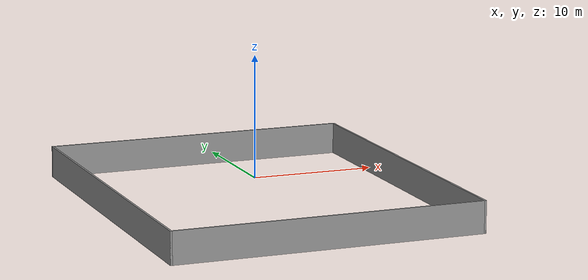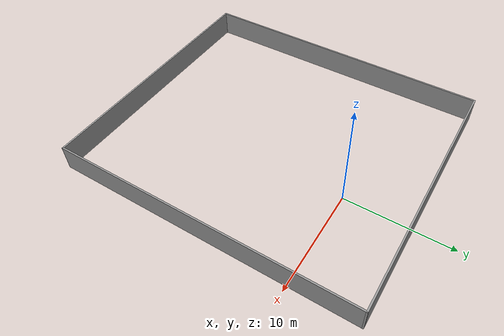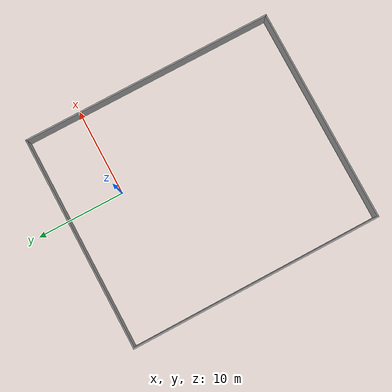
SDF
<?xml version='1.0'?>
<sdf version='1.6'>
  <model name='experiment.sdf'>
    <pose frame=''>-2.76537 -8.08491 0 0 -0 0</pose>
    <link name='Wall_0'>
      <collision name='Wall_0_Collision'>
        <geometry>
          <box>
            <size>28.75 0.15 2.5</size>
          </box>
        </geometry>
        <pose frame=''>0 0 1.25 0 -0 0</pose>
      </collision>
      <visual name='Wall_0_Visual'>
        <pose frame=''>0 0 1.25 0 -0 0</pose>
        <geometry>
          <box>
            <size>28.75 0.15 2.5</size>
          </box>
        </geometry>
        <material>
          <script>
            <uri>file://media/materials/scripts/gazebo.material</uri>
            <name>Gazebo/Grey</name>
          </script>
          <ambient>1 1 1 1</ambient>
        </material>
      </visual>
      <pose frame=''>-12.175 0 0 0 0 -1.5708</pose>
    </link>
    <link name='Wall_1'>
      <collision name='Wall_1_Collision'>
        <geometry>
          <box>
            <size>24.5 0.15 2.5</size>
          </box>
        </geometry>
        <pose frame=''>0 0 1.25 0 -0 0</pose>
      </collision>
      <visual name='Wall_1_Visual'>
        <pose frame=''>0 0 1.25 0 -0 0</pose>
        <geometry>
          <box>
            <size>24.5 0.15 2.5</size>
          </box>
        </geometry>
        <material>
          <script>
            <uri>file://media/materials/scripts/gazebo.material</uri>
            <name>Gazebo/Grey</name>
          </script>
          <ambient>1 1 1 1</ambient>
        </material>
      </visual>
      <pose frame=''>0 -14.3 0 0 -0 0</pose>
    </link>
    <link name='Wall_2'>
      <collision name='Wall_2_Collision'>
        <geometry>
          <box>
            <size>28.75 0.15 2.5</size>
          </box>
        </geometry>
        <pose frame=''>0 0 1.25 0 -0 0</pose>
      </collision>
      <visual name='Wall_2_Visual'>
        <pose frame=''>0 0 1.25 0 -0 0</pose>
        <geometry>
          <box>
            <size>28.75 0.15 2.5</size>
          </box>
        </geometry>
        <material>
          <script>
            <uri>file://media/materials/scripts/gazebo.material</uri>
            <name>Gazebo/Grey</name>
          </script>
          <ambient>1 1 1 1</ambient>
        </material>
      </visual>
      <pose frame=''>12.175 0 0 0 -0 1.5708</pose>
    </link>
    <link name='Wall_3'>
      <collision name='Wall_3_Collision'>
        <geometry>
          <box>
            <size>24.5 0.15 2.5</size>
          </box>
        </geometry>
        <pose frame=''>0 0 1.25 0 -0 0</pose>
      </collision>
      <visual name='Wall_3_Visual'>
        <pose frame=''>0 0 1.25 0 -0 0</pose>
        <geometry>
          <box>
            <size>24.5 0.15 2.5</size>
          </box>
        </geometry>
        <material>
          <script>
            <uri>file://media/materials/scripts/gazebo.material</uri>
            <name>Gazebo/Grey</name>
          </script>
          <ambient>1 1 1 1</ambient>
        </material>
      </visual>
      <pose frame=''>0 14.3 0 0 -0 3.14159</pose>
    </link>
    <static>1</static>
  </model>
</sdf>
